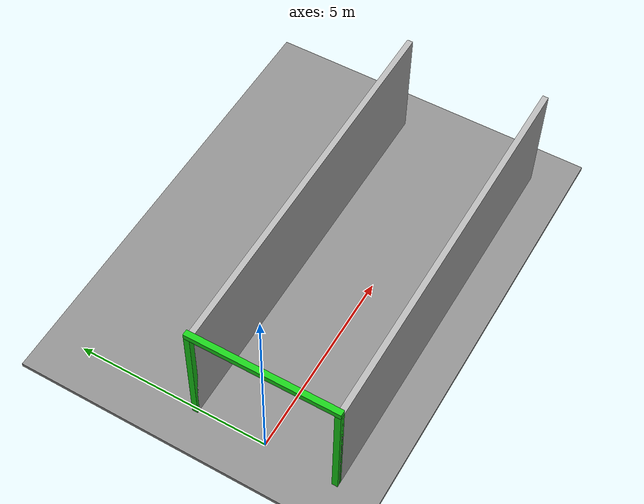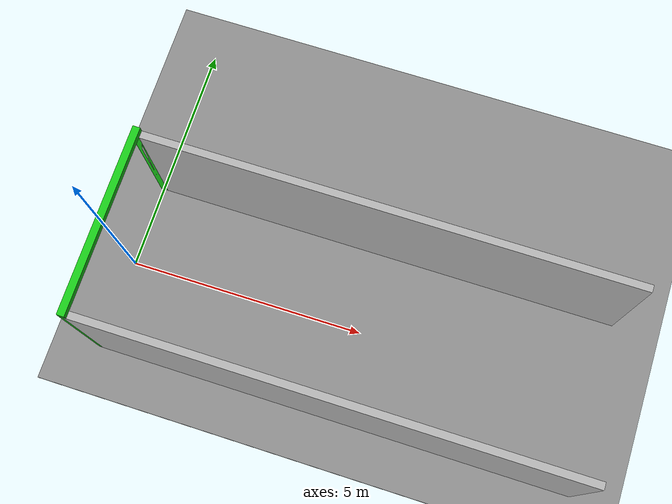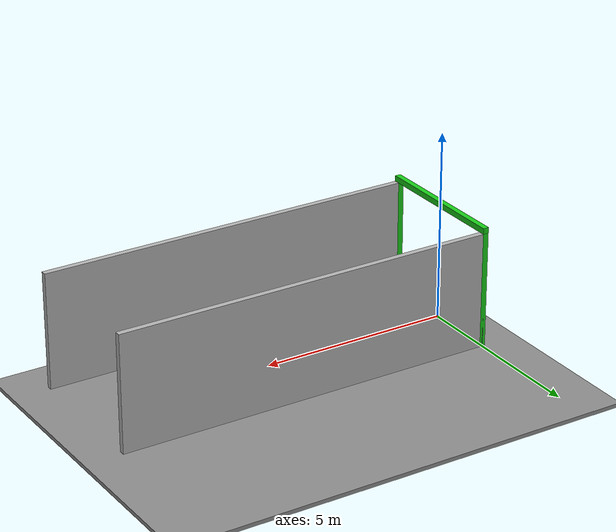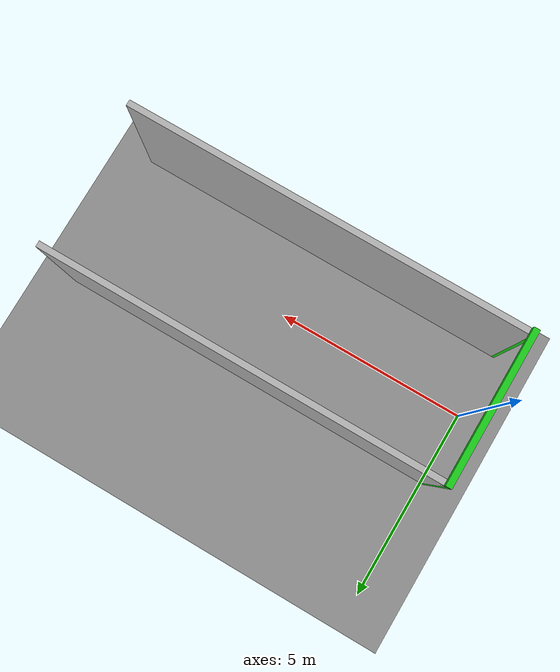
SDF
<?xml version="1.0" ?>
<sdf version="1.6">

  <world name="aerothon_corridor">

    <!-- PHYSICS -->

    <physics type="ode" name="default_physics">
      <max_step_size>0.001</max_step_size>
      <real_time_factor>1.0</real_time_factor>
      <real_time_update_rate>1000</real_time_update_rate>
    </physics>

    <!-- SUN -->

    <include>
      <uri>model://sun</uri>
    </include>

    <!-- GROUND -->

    <model name="ground">
      <static>true</static>

      <pose>5 0 -0.05 0 0 0</pose>

      <link name="link">

        <collision name="collision">
          <geometry>
            <box>
              <size>30 20 0.1</size>
            </box>
          </geometry>
        </collision>

        <visual name="visual">
          <geometry>
            <box>
              <size>30 20 0.1</size>
            </box>
          </geometry>

          <material>
            <ambient>0.45 0.45 0.45 1</ambient>
            <diffuse>0.55 0.55 0.55 1</diffuse>
          </material>
        </visual>

      </link>
    </model>

    <!-- ENTRANCE FRAME -->
    <!-- Clear width  = 3.500 m -->
    <!-- Clear height = 3.048 m = 10 ft -->
    <!-- Frame thickness = 0.150 m -->

    <!-- LEFT POST -->

    <model name="entrance_left_post">
      <static>true</static>

      <pose>0 1.825 1.524 0 0 0</pose>

      <link name="link">

        <collision name="collision">
          <geometry>
            <box>
              <size>0.15 0.15 3.048</size>
            </box>
          </geometry>
        </collision>

        <visual name="visual">
          <geometry>
            <box>
              <size>0.15 0.15 3.048</size>
            </box>
          </geometry>

          <material>
            <ambient>0.1 0.8 0.1 1</ambient>
            <diffuse>0.1 0.8 0.1 1</diffuse>
          </material>
        </visual>

      </link>
    </model>

    <!-- RIGHT POST -->

    <model name="entrance_right_post">
      <static>true</static>

      <pose>0 -1.825 1.524 0 0 0</pose>

      <link name="link">

        <collision name="collision">
          <geometry>
            <box>
              <size>0.15 0.15 3.048</size>
            </box>
          </geometry>
        </collision>

        <visual name="visual">
          <geometry>
            <box>
              <size>0.15 0.15 3.048</size>
            </box>
          </geometry>

          <material>
            <ambient>0.1 0.8 0.1 1</ambient>
            <diffuse>0.1 0.8 0.1 1</diffuse>
          </material>
        </visual>

      </link>
    </model>

    <!-- TOP CROSSBAR -->

    <model name="entrance_top_bar">
      <static>true</static>

      <!-- Bottom of bar = 3.048 m -->
      <pose>0 0 3.123 0 0 0</pose>

      <link name="link">

        <collision name="collision">
          <geometry>
            <box>
              <size>0.15 3.80 0.15</size>
            </box>
          </geometry>
        </collision>

        <visual name="visual">
          <geometry>
            <box>
              <size>0.15 3.80 0.15</size>
            </box>
          </geometry>

          <material>
            <ambient>0.1 0.8 0.1 1</ambient>
            <diffuse>0.1 0.8 0.1 1</diffuse>
          </material>
        </visual>

      </link>
    </model>

    <!-- CORRIDOR -->
    <!-- Length = 10 m -->
    <!-- Internal width = 3.5 m -->
    <!-- Height = 3.048 m -->

    <!-- LEFT WALL -->

    <model name="left_corridor_wall">
      <static>true</static>

      <pose>5 1.825 1.524 0 0 0</pose>

      <link name="link">

        <collision name="collision">
          <geometry>
            <box>
              <size>10 0.15 3.048</size>
            </box>
          </geometry>
        </collision>

        <visual name="visual">
          <geometry>
            <box>
              <size>10 0.15 3.048</size>
            </box>
          </geometry>

          <material>
            <ambient>0.7 0.7 0.7 1</ambient>
            <diffuse>0.7 0.7 0.7 1</diffuse>
          </material>
        </visual>

      </link>
    </model>

    <!-- RIGHT WALL -->

    <model name="right_corridor_wall">
      <static>true</static>

      <pose>5 -1.825 1.524 0 0 0</pose>

      <link name="link">

        <collision name="collision">
          <geometry>
            <box>
              <size>10 0.15 3.048</size>
            </box>
          </geometry>
        </collision>

        <visual name="visual">
          <geometry>
            <box>
              <size>10 0.15 3.048</size>
            </box>
          </geometry>

          <material>
            <ambient>0.7 0.7 0.7 1</ambient>
            <diffuse>0.7 0.7 0.7 1</diffuse>
          </material>
        </visual>

      </link>
    </model>
    <plugin name="gazebo_ros_state"
        filename="libgazebo_ros_state.so">

    <ros>
      <namespace>/gazebo</namespace>
    </ros>

    <update_rate>50.0</update_rate>

  </plugin>

  </world>

</sdf>
